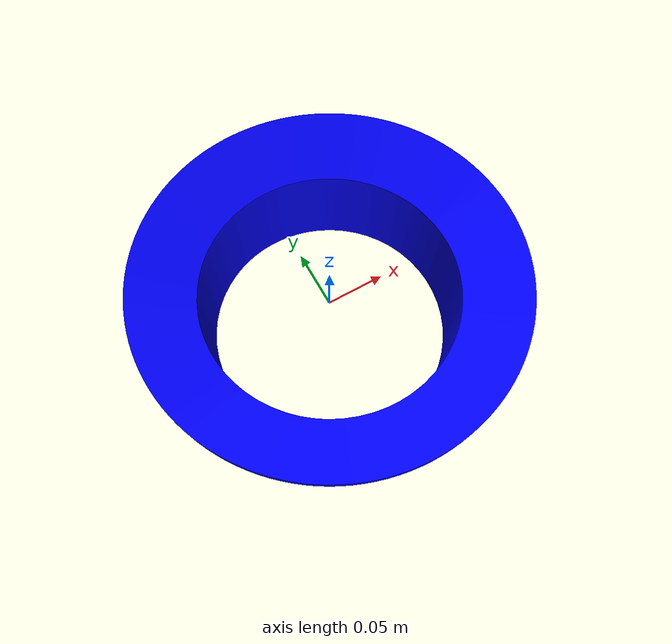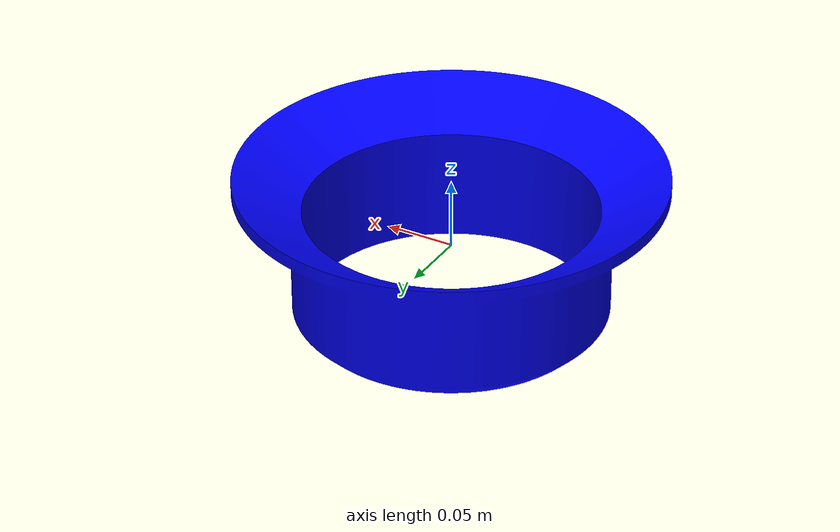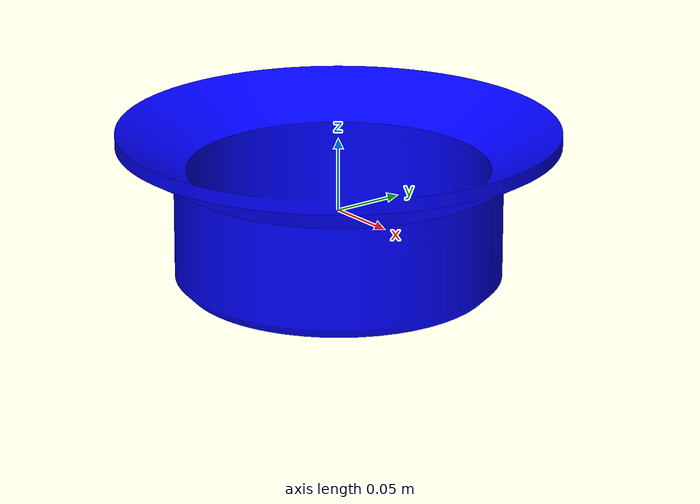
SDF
<?xml version="1.0"?>
<sdf version="1.5">
  <model name="ring">
    <!-- Set the model as static -->
    <static>true</static>

    <!-- Give the base link a unique name -->
    <link name="base">
      <!-- Offset the base by half the length of the cylinder -->
      <pose>0 0 0 0 0 0</pose>
      <inertial>
        <mass>1</mass>
        <inertia>
          <ixx>0.001087473</ixx>
          <iyy>0.001087473</iyy>
          <izz>0.001092437</izz>
          <ixy>0</ixy>
          <ixz>0</ixz>
          <iyz>0</iyz>
        </inertia>
      </inertial>
      <collision name="base_collision">
       <pose>-0.15 0.15 -0.055 1.57 0 0</pose>
        <geometry>
          <mesh>
            <uri>model://ring/meshes/tube_mesh.stl</uri>
            <scale>0.001 0.001 0.001</scale>
          </mesh>
        </geometry>

      </collision>

      <!-- The visual is mostly a copy of the collision -->
      <visual name="base_visual">
        <!-- Offset the visual by half the base's height. We are not rotating
             mesh since symmetrical -->
        <pose>-0.15 0.15 -0.055 1.57 0 0</pose>
        <geometry>
          <mesh>
            <uri>model://ring/meshes/tube_mesh.stl</uri>
            <scale>0.001 0.001 0.001</scale>
          </mesh>
        </geometry>
        <material>
          <ambient>0 0 1 1</ambient> <!-- Ambient color: blue -->
          <specular>0.1 0.1 0.1 1</specular> <!-- Small specular highlight -->
        </material>
      </visual>
    </link>
  </model>
</sdf>
